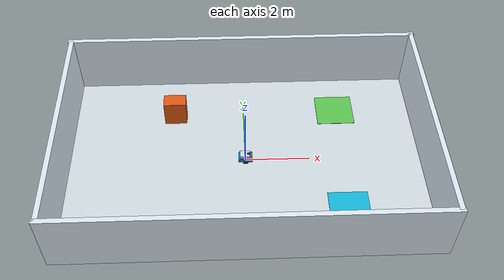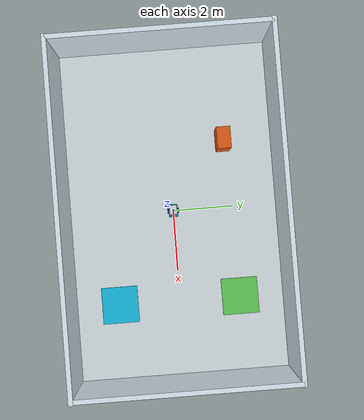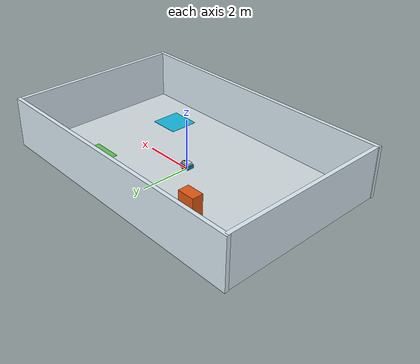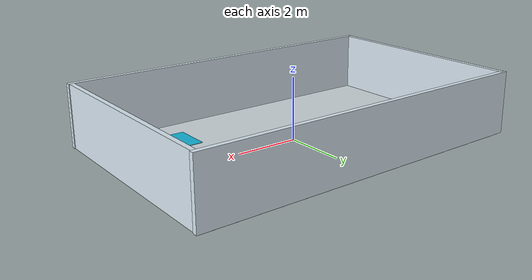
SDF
<?xml version="1.0"?>
<sdf version="1.9">
  <world name="flyto_hospital">
    <physics name="default_physics" type="dart">
      <max_step_size>0.001</max_step_size>
      <real_time_factor>1.0</real_time_factor>
    </physics>
    <gravity>0 0 -9.80665</gravity>
    <magnetic_field>6e-06 2.3e-05 -4.2e-05</magnetic_field>

    <plugin filename="gz-sim-physics-system"
            name="gz::sim::systems::Physics"/>
    <plugin filename="gz-sim-user-commands-system"
            name="gz::sim::systems::UserCommands"/>
    <plugin filename="gz-sim-scene-broadcaster-system"
            name="gz::sim::systems::SceneBroadcaster"/>
    <plugin filename="gz-sim-sensors-system"
            name="gz::sim::systems::Sensors">
      <render_engine>ogre2</render_engine>
    </plugin>

    <scene>
      <ambient>0.65 0.65 0.65 1</ambient>
      <background>0.92 0.95 0.98 1</background>
      <shadows>true</shadows>
      <grid>true</grid>
    </scene>
    <light name="ceiling_light" type="directional">
      <cast_shadows>true</cast_shadows>
      <pose>0 0 8 0 0 0</pose>
      <diffuse>0.9 0.9 0.9 1</diffuse>
      <specular>0.3 0.3 0.3 1</specular>
      <direction>-0.3 0.2 -1</direction>
    </light>

    <model name="hospital_floor">
      <static>true</static>
      <link name="floor">
        <collision name="collision">
          <geometry>
            <box>
              <size>11 7 0.10</size>
            </box>
          </geometry>
        </collision>
        <visual name="visual">
          <geometry>
            <box>
              <size>11 7 0.10</size>
            </box>
          </geometry>
          <material>
            <ambient>0.62 0.66 0.68 1</ambient>
            <diffuse>0.82 0.86 0.88 1</diffuse>
            <specular>0.2 0.2 0.2 1</specular>
          </material>
        </visual>
      </link>
    </model>

    <model name="outer_walls">
      <static>true</static>
      <link name="north">
        <pose>0 3.5 1 0 0 0</pose>
        <collision name="collision">
          <geometry><box><size>11.2 0.15 2</size></box></geometry>
        </collision>
        <visual name="visual">
          <geometry><box><size>11.2 0.15 2</size></box></geometry>
          <material>
            <ambient>0.75 0.83 0.88 1</ambient>
            <diffuse>0.86 0.92 0.96 1</diffuse>
          </material>
        </visual>
      </link>
      <link name="south">
        <pose>0 -3.5 1 0 0 0</pose>
        <collision name="collision">
          <geometry><box><size>11.2 0.15 2</size></box></geometry>
        </collision>
        <visual name="visual">
          <geometry><box><size>11.2 0.15 2</size></box></geometry>
          <material>
            <ambient>0.75 0.83 0.88 1</ambient>
            <diffuse>0.86 0.92 0.96 1</diffuse>
          </material>
        </visual>
      </link>
      <link name="east">
        <pose>5.5 0 1 0 0 0</pose>
        <collision name="collision">
          <geometry><box><size>0.15 7 2</size></box></geometry>
        </collision>
        <visual name="visual">
          <geometry><box><size>0.15 7 2</size></box></geometry>
          <material>
            <ambient>0.75 0.83 0.88 1</ambient>
            <diffuse>0.86 0.92 0.96 1</diffuse>
          </material>
        </visual>
      </link>
      <link name="west">
        <pose>-5.5 0 1 0 0 0</pose>
        <collision name="collision">
          <geometry><box><size>0.15 7 2</size></box></geometry>
        </collision>
        <visual name="visual">
          <geometry><box><size>0.15 7 2</size></box></geometry>
          <material>
            <ambient>0.75 0.83 0.88 1</ambient>
            <diffuse>0.86 0.92 0.96 1</diffuse>
          </material>
        </visual>
      </link>
    </model>

    <model name="pharmacy_zone">
      <static>true</static>
      <pose>3 -2 0.056 0 0 0</pose>
      <link name="marker">
        <visual name="visual">
          <geometry><box><size>1.2 1.2 0.012</size></box></geometry>
          <material>
            <ambient>0.03 0.48 0.62 1</ambient>
            <diffuse>0.08 0.72 0.86 1</diffuse>
          </material>
        </visual>
      </link>
    </model>

    <model name="ward_a_zone">
      <static>true</static>
      <pose>3 2 0.056 0 0 0</pose>
      <link name="marker">
        <visual name="visual">
          <geometry><box><size>1.2 1.2 0.012</size></box></geometry>
          <material>
            <ambient>0.22 0.55 0.20 1</ambient>
            <diffuse>0.36 0.78 0.32 1</diffuse>
          </material>
        </visual>
      </link>
    </model>

    <model name="side_obstacle">
      <static>true</static>
      <pose>-2.2 1.8 0.45 0 0 0</pose>
      <link name="cart">
        <collision name="collision">
          <geometry><box><size>0.7 0.45 0.9</size></box></geometry>
        </collision>
        <visual name="visual">
          <geometry><box><size>0.7 0.45 0.9</size></box></geometry>
          <material>
            <ambient>0.62 0.20 0.04 1</ambient>
            <diffuse>0.88 0.35 0.08 1</diffuse>
          </material>
        </visual>
      </link>
    </model>

    <include>
      <uri>model://flyto_rover</uri>
      <name>flyto_rover</name>
      <pose>0 0 0 0 0 0</pose>
    </include>
  </world>
</sdf>

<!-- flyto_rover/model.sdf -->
<sdf version="1.9">
  <model name="flyto_rover">
    <static>false</static>
    <self_collide>false</self_collide>

    <link name="base_link">
      <pose>0 0 0.14 0 0 0</pose>
      <inertial>
        <mass>8.0</mass>
        <inertia>
          <ixx>0.075</ixx>
          <iyy>0.135</iyy>
          <izz>0.195</izz>
          <ixy>0</ixy>
          <ixz>0</ixz>
          <iyz>0</iyz>
        </inertia>
      </inertial>
      <collision name="base_collision">
        <geometry>
          <box>
            <size>0.42 0.30 0.14</size>
          </box>
        </geometry>
      </collision>
      <visual name="base_visual">
        <geometry>
          <box>
            <size>0.42 0.30 0.14</size>
          </box>
        </geometry>
        <material>
          <ambient>0.04 0.28 0.42 1</ambient>
          <diffuse>0.04 0.48 0.70 1</diffuse>
          <specular>0.2 0.2 0.2 1</specular>
        </material>
      </visual>
      <visual name="payload_tray">
        <pose>-0.02 0 0.12 0 0 0</pose>
        <geometry>
          <box>
            <size>0.30 0.24 0.08</size>
          </box>
        </geometry>
        <material>
          <ambient>0.65 0.68 0.72 1</ambient>
          <diffuse>0.82 0.85 0.88 1</diffuse>
        </material>
      </visual>
      <visual name="direction_marker">
        <pose>0.19 0 0.105 0 0 0</pose>
        <geometry>
          <box>
            <size>0.04 0.12 0.04</size>
          </box>
        </geometry>
        <material>
          <ambient>0.9 0.25 0.05 1</ambient>
          <diffuse>1 0.35 0.05 1</diffuse>
        </material>
      </visual>
    </link>

    <link name="left_wheel">
      <pose>0 0.17 0.08 1.5708 0 0</pose>
      <inertial>
        <mass>0.6</mass>
        <inertia>
          <ixx>0.002</ixx>
          <iyy>0.002</iyy>
          <izz>0.001</izz>
          <ixy>0</ixy>
          <ixz>0</ixz>
          <iyz>0</iyz>
        </inertia>
      </inertial>
      <collision name="collision">
        <geometry>
          <cylinder>
            <radius>0.08</radius>
            <length>0.04</length>
          </cylinder>
        </geometry>
        <surface>
          <friction>
            <ode>
              <mu>1.0</mu>
              <mu2>1.0</mu2>
            </ode>
          </friction>
        </surface>
      </collision>
      <visual name="visual">
        <geometry>
          <cylinder>
            <radius>0.08</radius>
            <length>0.04</length>
          </cylinder>
        </geometry>
        <material>
          <ambient>0.03 0.03 0.03 1</ambient>
          <diffuse>0.08 0.08 0.08 1</diffuse>
        </material>
      </visual>
    </link>

    <link name="right_wheel">
      <pose>0 -0.17 0.08 1.5708 0 0</pose>
      <inertial>
        <mass>0.6</mass>
        <inertia>
          <ixx>0.002</ixx>
          <iyy>0.002</iyy>
          <izz>0.001</izz>
          <ixy>0</ixy>
          <ixz>0</ixz>
          <iyz>0</iyz>
        </inertia>
      </inertial>
      <collision name="collision">
        <geometry>
          <cylinder>
            <radius>0.08</radius>
            <length>0.04</length>
          </cylinder>
        </geometry>
        <surface>
          <friction>
            <ode>
              <mu>1.0</mu>
              <mu2>1.0</mu2>
            </ode>
          </friction>
        </surface>
      </collision>
      <visual name="visual">
        <geometry>
          <cylinder>
            <radius>0.08</radius>
            <length>0.04</length>
          </cylinder>
        </geometry>
        <material>
          <ambient>0.03 0.03 0.03 1</ambient>
          <diffuse>0.08 0.08 0.08 1</diffuse>
        </material>
      </visual>
    </link>

    <link name="rear_caster">
      <pose>-0.15 0 0.045 0 0 0</pose>
      <inertial>
        <mass>0.15</mass>
        <inertia>
          <ixx>0.0001</ixx>
          <iyy>0.0001</iyy>
          <izz>0.0001</izz>
          <ixy>0</ixy>
          <ixz>0</ixz>
          <iyz>0</iyz>
        </inertia>
      </inertial>
      <collision name="collision">
        <geometry>
          <sphere>
            <radius>0.045</radius>
          </sphere>
        </geometry>
        <surface>
          <friction>
            <ode>
              <mu>0.05</mu>
              <mu2>0.05</mu2>
            </ode>
          </friction>
        </surface>
      </collision>
      <visual name="visual">
        <geometry>
          <sphere>
            <radius>0.045</radius>
          </sphere>
        </geometry>
        <material>
          <ambient>0.12 0.12 0.12 1</ambient>
          <diffuse>0.2 0.2 0.2 1</diffuse>
        </material>
      </visual>
    </link>

    <link name="lidar_link">
      <pose>0.10 0 0.285 0 0 0</pose>
      <inertial>
        <mass>0.2</mass>
        <inertia>
          <ixx>0.0002</ixx>
          <iyy>0.0002</iyy>
          <izz>0.0002</izz>
          <ixy>0</ixy>
          <ixz>0</ixz>
          <iyz>0</iyz>
        </inertia>
      </inertial>
      <visual name="visual">
        <geometry>
          <cylinder>
            <radius>0.045</radius>
            <length>0.035</length>
          </cylinder>
        </geometry>
        <material>
          <ambient>0.08 0.08 0.08 1</ambient>
          <diffuse>0.16 0.16 0.16 1</diffuse>
        </material>
      </visual>
      <sensor name="front_lidar" type="gpu_lidar">
        <topic>/flyto/scan</topic>
        <update_rate>10</update_rate>
        <always_on>true</always_on>
        <visualize>true</visualize>
        <lidar>
          <scan>
            <horizontal>
              <samples>360</samples>
              <resolution>1</resolution>
              <min_angle>-3.14159</min_angle>
              <max_angle>3.14159</max_angle>
            </horizontal>
          </scan>
          <range>
            <min>0.12</min>
            <max>8.0</max>
            <resolution>0.01</resolution>
          </range>
        </lidar>
      </sensor>
    </link>

    <link name="route_camera_link">
      <pose>0.32 0 0.30 0 1.5708 0</pose>
      <inertial>
        <mass>0.08</mass>
        <inertia>
          <ixx>0.00008</ixx>
          <iyy>0.00008</iyy>
          <izz>0.00008</izz>
          <ixy>0</ixy>
          <ixz>0</ixz>
          <iyz>0</iyz>
        </inertia>
      </inertial>
      <sensor name="route_camera" type="camera">
        <topic>/flyto/camera/image</topic>
        <update_rate>15</update_rate>
        <always_on>true</always_on>
        <visualize>true</visualize>
        <camera>
          <horizontal_fov>1.20</horizontal_fov>
          <image>
            <width>160</width>
            <height>120</height>
            <format>R8G8B8</format>
          </image>
          <clip>
            <near>0.05</near>
            <far>1.0</far>
          </clip>
        </camera>
      </sensor>
    </link>

    <joint name="left_wheel_joint" type="revolute">
      <parent>base_link</parent>
      <child>left_wheel</child>
      <axis>
        <xyz expressed_in="__model__">0 1 0</xyz>
      </axis>
    </joint>
    <joint name="right_wheel_joint" type="revolute">
      <parent>base_link</parent>
      <child>right_wheel</child>
      <axis>
        <xyz expressed_in="__model__">0 1 0</xyz>
      </axis>
    </joint>
    <joint name="rear_caster_joint" type="ball">
      <parent>base_link</parent>
      <child>rear_caster</child>
    </joint>
    <joint name="lidar_joint" type="fixed">
      <parent>base_link</parent>
      <child>lidar_link</child>
    </joint>
    <joint name="route_camera_joint" type="fixed">
      <parent>base_link</parent>
      <child>route_camera_link</child>
    </joint>

    <plugin filename="gz-sim-diff-drive-system"
            name="gz::sim::systems::DiffDrive">
      <left_joint>left_wheel_joint</left_joint>
      <right_joint>right_wheel_joint</right_joint>
      <wheel_separation>0.34</wheel_separation>
      <wheel_radius>0.08</wheel_radius>
      <topic>/flyto/cmd_vel</topic>
      <odom_topic>/flyto/odom</odom_topic>
      <tf_topic>/flyto/tf</tf_topic>
      <frame_id>odom</frame_id>
      <child_frame_id>base_link</child_frame_id>
      <odom_publish_frequency>30</odom_publish_frequency>
    </plugin>
    <plugin filename="gz-sim-odometry-publisher-system"
            name="gz::sim::systems::OdometryPublisher">
      <odom_frame>world</odom_frame>
      <robot_base_frame>flyto_rover</robot_base_frame>
      <odom_topic>/flyto/ground_truth</odom_topic>
      <odom_publish_frequency>30</odom_publish_frequency>
      <dimensions>3</dimensions>
    </plugin>
  </model>
</sdf>
